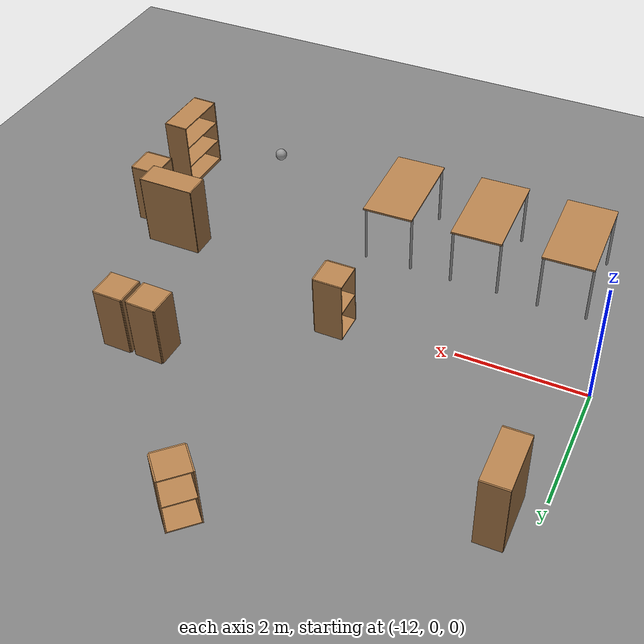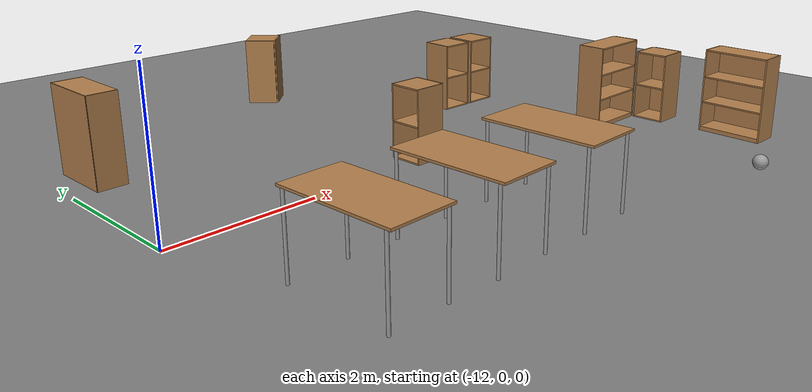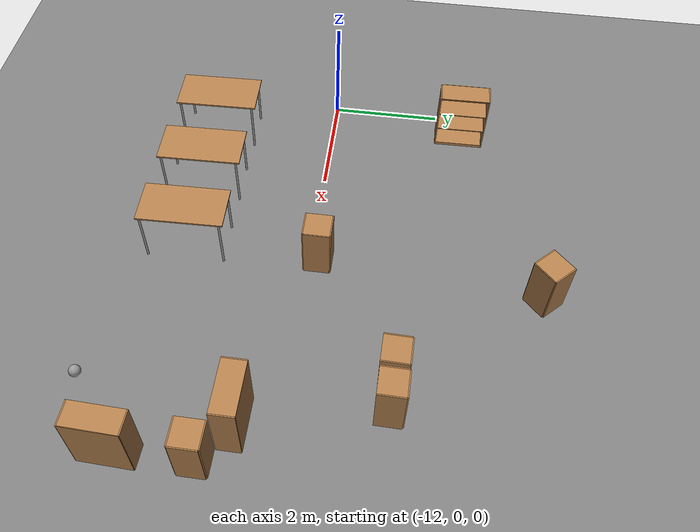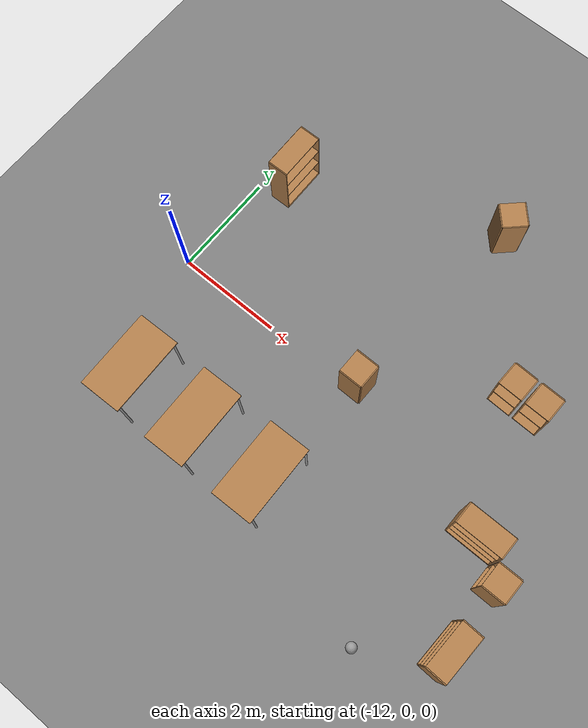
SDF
<sdf version="1.6">
 <world name="default">
  <model name="ground_plane">
   <static>1</static>
   <link name="link">
    <collision name="collision">
     <geometry><plane><normal>0 0 1</normal><size>100 100</size></plane></geometry>
    </collision>
    <visual name="visual">
     <geometry><plane><normal>0 0 1</normal><size>100 100</size></plane></geometry>
     <material>
      <ambient>0.5 0.5 0.5 1</ambient>
      <diffuse>0.5 0.5 0.5 1</diffuse>
      <specular>0.1 0.1 0.1 1</specular>
     </material>
    </visual>
   </link>
  </model>
  <model name="cabinet">
   <static>1</static>
   <link name="cabinet_bottom_plate">
    <inertial>
     <pose>0 0 -1 0 -0 0</pose>
     <inertia><ixx>2.05</ixx><ixy>0</ixy><ixz>0</ixz><iyy>2.05</iyy><iyz>0</iyz><izz>2.05</izz></inertia>
     <mass>25</mass>
    </inertial>
    <collision name="cabinet_bottom_plate_geom">
     <pose>0 0 0.01 0 -0 0</pose>
     <geometry><box><size>0.45 0.45 0.02</size></box></geometry>
    </collision>
    <visual name="cabinet_bottom_plate_geom_visual">
     <pose>0 0 0.01 0 -0 0</pose>
     <geometry><box><size>0.45 0.45 0.02</size></box></geometry>
     <material>
      <script><uri>file://media/materials/scripts/gazebo.material</uri><name>Gazebo/Wood</name></script>
     </material>
    </visual>
    <collision name="cabinet_bottom_plate_geom_cabinet_back_plate">
     <pose>0.235 0 0.51 0 -0 0</pose>
     <geometry><box><size>0.02 0.45 1.02</size></box></geometry>
    </collision>
    <visual name="cabinet_bottom_plate_geom_cabinet_back_plate_visual">
     <pose>0.235 0 0.51 0 -0 0</pose>
     <geometry><box><size>0.02 0.45 1.02</size></box></geometry>
     <material>
      <script><uri>file://media/materials/scripts/gazebo.material</uri><name>Gazebo/Wood</name></script>
     </material>
    </visual>
    <collision name="cabinet_bottom_plate_geom_cabinet_left_plate">
     <pose>0 0.235 0.51 0 -0 0</pose>
     <geometry><box><size>0.45 0.02 1.02</size></box></geometry>
    </collision>
    <visual name="cabinet_bottom_plate_geom_cabinet_left_plate_visual">
     <pose>0 0.235 0.51 0 -0 0</pose>
     <geometry><box><size>0.45 0.02 1.02</size></box></geometry>
     <material>
      <script><uri>file://media/materials/scripts/gazebo.material</uri><name>Gazebo/Wood</name></script>
     </material>
    </visual>
    <collision name="cabinet_bottom_plate_geom_cabinet_middle_plate">
     <pose>0 0 0.51 0 -0 0</pose>
     <geometry><box><size>0.45 0.45 0.02</size></box></geometry>
    </collision>
    <visual name="cabinet_bottom_plate_geom_cabinet_middle_plate_visual">
     <pose>0 0 0.51 0 -0 0</pose>
     <geometry><box><size>0.45 0.45 0.02</size></box></geometry>
     <material>
      <script><uri>file://media/materials/scripts/gazebo.material</uri><name>Gazebo/Wood</name></script>
     </material>
    </visual>
    <collision name="cabinet_bottom_plate_geom_cabinet_right_plate">
     <pose>0 -0.235 0.51 0 -0 0</pose>
     <geometry><box><size>0.45 0.02 1.02</size></box></geometry>
    </collision>
    <visual name="cabinet_bottom_plate_geom_cabinet_right_plate_visual">
     <pose>0 -0.235 0.51 0 -0 0</pose>
     <geometry><box><size>0.45 0.02 1.02</size></box></geometry>
     <material>
      <script><uri>file://media/materials/scripts/gazebo.material</uri><name>Gazebo/Wood</name></script>
     </material>
    </visual>
    <collision name="cabinet_bottom_plate_geom_cabinet_top_plate">
     <pose>0 0 1.01 0 -0 0</pose>
     <geometry><box><size>0.45 0.45 0.02</size></box></geometry>
    </collision>
    <visual name="cabinet_bottom_plate_geom_cabinet_top_plate_visual">
     <pose>0 0 1.01 0 -0 0</pose>
     <geometry><box><size>0.45 0.45 0.02</size></box></geometry>
     <material>
      <script><uri>file://media/materials/scripts/gazebo.material</uri><name>Gazebo/Wood</name></script>
     </material>
    </visual>
   </link>
   <pose>-5.98044 1.64153 0 0 -0 1.54702</pose>
  </model>
  <model name="cabinet_clone">
   <static>1</static>
   <link name="cabinet_bottom_plate">
    <inertial>
     <pose>0 0 -1 0 -0 0</pose>
     <inertia><ixx>2.05</ixx><ixy>0</ixy><ixz>0</ixz><iyy>2.05</iyy><iyz>0</iyz><izz>2.05</izz></inertia>
     <mass>25</mass>
    </inertial>
    <collision name="cabinet_bottom_plate_geom">
     <pose>0 0 0.01 0 -0 0</pose>
     <geometry><box><size>0.45 0.45 0.02</size></box></geometry>
    </collision>
    <visual name="cabinet_bottom_plate_geom_visual">
     <pose>0 0 0.01 0 -0 0</pose>
     <geometry><box><size>0.45 0.45 0.02</size></box></geometry>
     <material>
      <script><uri>file://media/materials/scripts/gazebo.material</uri><name>Gazebo/Wood</name></script>
     </material>
    </visual>
    <collision name="cabinet_bottom_plate_geom_cabinet_back_plate">
     <pose>0.235 0 0.51 0 -0 0</pose>
     <geometry><box><size>0.02 0.45 1.02</size></box></geometry>
    </collision>
    <visual name="cabinet_bottom_plate_geom_cabinet_back_plate_visual">
     <pose>0.235 0 0.51 0 -0 0</pose>
     <geometry><box><size>0.02 0.45 1.02</size></box></geometry>
     <material>
      <script><uri>file://media/materials/scripts/gazebo.material</uri><name>Gazebo/Wood</name></script>
     </material>
    </visual>
    <collision name="cabinet_bottom_plate_geom_cabinet_left_plate">
     <pose>0 0.235 0.51 0 -0 0</pose>
     <geometry><box><size>0.45 0.02 1.02</size></box></geometry>
    </collision>
    <visual name="cabinet_bottom_plate_geom_cabinet_left_plate_visual">
     <pose>0 0.235 0.51 0 -0 0</pose>
     <geometry><box><size>0.45 0.02 1.02</size></box></geometry>
     <material>
      <script><uri>file://media/materials/scripts/gazebo.material</uri><name>Gazebo/Wood</name></script>
     </material>
    </visual>
    <collision name="cabinet_bottom_plate_geom_cabinet_middle_plate">
     <pose>0 0 0.51 0 -0 0</pose>
     <geometry><box><size>0.45 0.45 0.02</size></box></geometry>
    </collision>
    <visual name="cabinet_bottom_plate_geom_cabinet_middle_plate_visual">
     <pose>0 0 0.51 0 -0 0</pose>
     <geometry><box><size>0.45 0.45 0.02</size></box></geometry>
     <material>
      <script><uri>file://media/materials/scripts/gazebo.material</uri><name>Gazebo/Wood</name></script>
     </material>
    </visual>
    <collision name="cabinet_bottom_plate_geom_cabinet_right_plate">
     <pose>0 -0.235 0.51 0 -0 0</pose>
     <geometry><box><size>0.45 0.02 1.02</size></box></geometry>
    </collision>
    <visual name="cabinet_bottom_plate_geom_cabinet_right_plate_visual">
     <pose>0 -0.235 0.51 0 -0 0</pose>
     <geometry><box><size>0.45 0.02 1.02</size></box></geometry>
     <material>
      <script><uri>file://media/materials/scripts/gazebo.material</uri><name>Gazebo/Wood</name></script>
     </material>
    </visual>
    <collision name="cabinet_bottom_plate_geom_cabinet_top_plate">
     <pose>0 0 1.01 0 -0 0</pose>
     <geometry><box><size>0.45 0.45 0.02</size></box></geometry>
    </collision>
    <visual name="cabinet_bottom_plate_geom_cabinet_top_plate_visual">
     <pose>0 0 1.01 0 -0 0</pose>
     <geometry><box><size>0.45 0.45 0.02</size></box></geometry>
     <material>
      <script><uri>file://media/materials/scripts/gazebo.material</uri><name>Gazebo/Wood</name></script>
     </material>
    </visual>
   </link>
   <pose>-5.43612 1.63774 0 0 -0 1.5554</pose>
  </model>
  <model name="bookshelf">
   <static>1</static>
   <link name="link">
    <inertial><mass>1</mass></inertial>
    <collision name="back">
     <pose>0 0.005 0.6 0 -0 0</pose>
     <geometry><box><size>0.9 0.01 1.2</size></box></geometry>
    </collision>
    <visual name="visual1">
     <pose>0 0.005 0.6 0 -0 0</pose>
     <geometry><box><size>0.9 0.01 1.2</size></box></geometry>
     <material>
      <script><uri>file://media/materials/scripts/gazebo.material</uri><name>Gazebo/Wood</name></script>
     </material>
    </visual>
    <collision name="left_side">
     <pose>0.45 -0.195 0.6 0 -0 0</pose>
     <geometry><box><size>0.02 0.4 1.2</size></box></geometry>
    </collision>
    <visual name="visual2">
     <pose>0.45 -0.195 0.6 0 -0 0</pose>
     <geometry><box><size>0.02 0.4 1.2</size></box></geometry>
     <material>
      <script><uri>file://media/materials/scripts/gazebo.material</uri><name>Gazebo/Wood</name></script>
     </material>
    </visual>
    <collision name="right_side">
     <pose>-0.45 -0.195 0.6 0 -0 0</pose>
     <geometry><box><size>0.02 0.4 1.2</size></box></geometry>
    </collision>
    <visual name="visual3">
     <pose>-0.45 -0.195 0.6 0 -0 0</pose>
     <geometry><box><size>0.02 0.4 1.2</size></box></geometry>
     <material>
      <script><uri>file://media/materials/scripts/gazebo.material</uri><name>Gazebo/Wood</name></script>
     </material>
    </visual>
    <collision name="bottom">
     <pose>0 -0.195 0.03 0 -0 0</pose>
     <geometry><box><size>0.88 0.4 0.06</size></box></geometry>
    </collision>
    <visual name="visual4">
     <pose>0 -0.195 0.03 0 -0 0</pose>
     <geometry><box><size>0.88 0.4 0.06</size></box></geometry>
     <material>
      <script><uri>file://media/materials/scripts/gazebo.material</uri><name>Gazebo/Wood</name></script>
     </material>
    </visual>
    <collision name="top">
     <pose>0 -0.195 1.19 0 -0 0</pose>
     <geometry><box><size>0.88 0.4 0.02</size></box></geometry>
    </collision>
    <visual name="visual5">
     <pose>0 -0.195 1.19 0 -0 0</pose>
     <geometry><box><size>0.88 0.4 0.02</size></box></geometry>
     <material>
      <script><uri>file://media/materials/scripts/gazebo.material</uri><name>Gazebo/Wood</name></script>
     </material>
    </visual>
    <collision name="low_shelf">
     <pose>0 -0.195 0.43 0 -0 0</pose>
     <geometry><box><size>0.88 0.4 0.02</size></box></geometry>
    </collision>
    <visual name="visual6">
     <pose>0 -0.195 0.43 0 -0 0</pose>
     <geometry><box><size>0.88 0.4 0.02</size></box></geometry>
     <material>
      <script><uri>file://media/materials/scripts/gazebo.material</uri><name>Gazebo/Wood</name></script>
     </material>
    </visual>
    <collision name="high_shelf">
     <pose>0 -0.195 0.8 0 -0 0</pose>
     <geometry><box><size>0.88 0.4 0.02</size></box></geometry>
    </collision>
    <visual name="visual7">
     <pose>0 -0.195 0.8 0 -0 0</pose>
     <geometry><box><size>0.88 0.4 0.02</size></box></geometry>
     <material>
      <script><uri>file://media/materials/scripts/gazebo.material</uri><name>Gazebo/Wood</name></script>
     </material>
    </visual>
   </link>
   <pose>-11.7 2.47575 0 0 -0 1.58665</pose>
  </model>
  <model name="table">
   <static>1</static>
   <link name="link">
    <collision name="surface">
     <pose>0 0 1 0 -0 0</pose>
     <geometry><box><size>1.5 0.8 0.03</size></box></geometry>
     <surface><friction><ode><mu>0.6</mu><mu2>0.6</mu2></ode></friction></surface>
    </collision>
    <visual name="visual1">
     <pose>0 0 1 0 -0 0</pose>
     <geometry><box><size>1.5 0.8 0.03</size></box></geometry>
     <material>
      <script><uri>file://media/materials/scripts/gazebo.material</uri><name>Gazebo/Wood</name></script>
     </material>
    </visual>
    <collision name="front_left_leg">
     <pose>0.68 0.38 0.5 0 -0 0</pose>
     <geometry><cylinder><radius>0.02</radius><length>1</length></cylinder></geometry>
    </collision>
    <visual name="front_left_leg">
     <pose>0.68 0.38 0.5 0 -0 0</pose>
     <geometry><cylinder><radius>0.02</radius><length>1</length></cylinder></geometry>
     <material>
      <script><uri>file://media/materials/scripts/gazebo.material</uri><name>Gazebo/Grey</name></script>
     </material>
    </visual>
    <collision name="front_right_leg">
     <pose>0.68 -0.38 0.5 0 -0 0</pose>
     <geometry><cylinder><radius>0.02</radius><length>1</length></cylinder></geometry>
    </collision>
    <visual name="front_right_leg">
     <pose>0.68 -0.38 0.5 0 -0 0</pose>
     <geometry><cylinder><radius>0.02</radius><length>1</length></cylinder></geometry>
     <material>
      <script><uri>file://media/materials/scripts/gazebo.material</uri><name>Gazebo/Grey</name></script>
     </material>
    </visual>
    <collision name="back_right_leg">
     <pose>-0.68 -0.38 0.5 0 -0 0</pose>
     <geometry><cylinder><radius>0.02</radius><length>1</length></cylinder></geometry>
    </collision>
    <visual name="back_right_leg">
     <pose>-0.68 -0.38 0.5 0 -0 0</pose>
     <geometry><cylinder><radius>0.02</radius><length>1</length></cylinder></geometry>
     <material>
      <script><uri>file://media/materials/scripts/gazebo.material</uri><name>Gazebo/Grey</name></script>
     </material>
    </visual>
    <collision name="back_left_leg">
     <pose>-0.68 0.38 0.5 0 -0 0</pose>
     <geometry><cylinder><radius>0.02</radius><length>1</length></cylinder></geometry>
    </collision>
    <visual name="back_left_leg">
     <pose>-0.68 0.38 0.5 0 -0 0</pose>
     <geometry><cylinder><radius>0.02</radius><length>1</length></cylinder></geometry>
     <material>
      <script><uri>file://media/materials/scripts/gazebo.material</uri><name>Gazebo/Grey</name></script>
     </material>
    </visual>
   </link>
   <pose>-9.71332 -2.19913 0 0 -0 1.59535</pose>
  </model>
  <model name="table_clone">
   <static>1</static>
   <link name="link">
    <collision name="surface">
     <pose>0 0 1 0 -0 0</pose>
     <geometry><box><size>1.5 0.8 0.03</size></box></geometry>
     <surface><friction><ode><mu>0.6</mu><mu2>0.6</mu2></ode></friction></surface>
    </collision>
    <visual name="visual1">
     <pose>0 0 1 0 -0 0</pose>
     <geometry><box><size>1.5 0.8 0.03</size></box></geometry>
     <material>
      <script><uri>file://media/materials/scripts/gazebo.material</uri><name>Gazebo/Wood</name></script>
     </material>
    </visual>
    <collision name="front_left_leg">
     <pose>0.68 0.38 0.5 0 -0 0</pose>
     <geometry><cylinder><radius>0.02</radius><length>1</length></cylinder></geometry>
    </collision>
    <visual name="front_left_leg">
     <pose>0.68 0.38 0.5 0 -0 0</pose>
     <geometry><cylinder><radius>0.02</radius><length>1</length></cylinder></geometry>
     <material>
      <script><uri>file://media/materials/scripts/gazebo.material</uri><name>Gazebo/Grey</name></script>
     </material>
    </visual>
    <collision name="front_right_leg">
     <pose>0.68 -0.38 0.5 0 -0 0</pose>
     <geometry><cylinder><radius>0.02</radius><length>1</length></cylinder></geometry>
    </collision>
    <visual name="front_right_leg">
     <pose>0.68 -0.38 0.5 0 -0 0</pose>
     <geometry><cylinder><radius>0.02</radius><length>1</length></cylinder></geometry>
     <material>
      <script><uri>file://media/materials/scripts/gazebo.material</uri><name>Gazebo/Grey</name></script>
     </material>
    </visual>
    <collision name="back_right_leg">
     <pose>-0.68 -0.38 0.5 0 -0 0</pose>
     <geometry><cylinder><radius>0.02</radius><length>1</length></cylinder></geometry>
    </collision>
    <visual name="back_right_leg">
     <pose>-0.68 -0.38 0.5 0 -0 0</pose>
     <geometry><cylinder><radius>0.02</radius><length>1</length></cylinder></geometry>
     <material>
      <script><uri>file://media/materials/scripts/gazebo.material</uri><name>Gazebo/Grey</name></script>
     </material>
    </visual>
    <collision name="back_left_leg">
     <pose>-0.68 0.38 0.5 0 -0 0</pose>
     <geometry><cylinder><radius>0.02</radius><length>1</length></cylinder></geometry>
    </collision>
    <visual name="back_left_leg">
     <pose>-0.68 0.38 0.5 0 -0 0</pose>
     <geometry><cylinder><radius>0.02</radius><length>1</length></cylinder></geometry>
     <material>
      <script><uri>file://media/materials/scripts/gazebo.material</uri><name>Gazebo/Grey</name></script>
     </material>
    </visual>
   </link>
   <pose>-8.27555 -2.18975 0 0 -0 1.59535</pose>
  </model>
  <model name="cabinet_0">
   <static>1</static>
   <link name="cabinet_bottom_plate">
    <inertial>
     <pose>0 0 -1 0 -0 0</pose>
     <inertia><ixx>2.05</ixx><ixy>0</ixy><ixz>0</ixz><iyy>2.05</iyy><iyz>0</iyz><izz>2.05</izz></inertia>
     <mass>25</mass>
    </inertial>
    <collision name="cabinet_bottom_plate_geom">
     <pose>0 0 0.01 0 -0 0</pose>
     <geometry><box><size>0.45 0.45 0.02</size></box></geometry>
    </collision>
    <visual name="cabinet_bottom_plate_geom_visual">
     <pose>0 0 0.01 0 -0 0</pose>
     <geometry><box><size>0.45 0.45 0.02</size></box></geometry>
     <material>
      <script><uri>file://media/materials/scripts/gazebo.material</uri><name>Gazebo/Wood</name></script>
     </material>
    </visual>
    <collision name="cabinet_bottom_plate_geom_cabinet_back_plate">
     <pose>0.235 0 0.51 0 -0 0</pose>
     <geometry><box><size>0.02 0.45 1.02</size></box></geometry>
    </collision>
    <visual name="cabinet_bottom_plate_geom_cabinet_back_plate_visual">
     <pose>0.235 0 0.51 0 -0 0</pose>
     <geometry><box><size>0.02 0.45 1.02</size></box></geometry>
     <material>
      <script><uri>file://media/materials/scripts/gazebo.material</uri><name>Gazebo/Wood</name></script>
     </material>
    </visual>
    <collision name="cabinet_bottom_plate_geom_cabinet_left_plate">
     <pose>0 0.235 0.51 0 -0 0</pose>
     <geometry><box><size>0.45 0.02 1.02</size></box></geometry>
    </collision>
    <visual name="cabinet_bottom_plate_geom_cabinet_left_plate_visual">
     <pose>0 0.235 0.51 0 -0 0</pose>
     <geometry><box><size>0.45 0.02 1.02</size></box></geometry>
     <material>
      <script><uri>file://media/materials/scripts/gazebo.material</uri><name>Gazebo/Wood</name></script>
     </material>
    </visual>
    <collision name="cabinet_bottom_plate_geom_cabinet_middle_plate">
     <pose>0 0 0.51 0 -0 0</pose>
     <geometry><box><size>0.45 0.45 0.02</size></box></geometry>
    </collision>
    <visual name="cabinet_bottom_plate_geom_cabinet_middle_plate_visual">
     <pose>0 0 0.51 0 -0 0</pose>
     <geometry><box><size>0.45 0.45 0.02</size></box></geometry>
     <material>
      <script><uri>file://media/materials/scripts/gazebo.material</uri><name>Gazebo/Wood</name></script>
     </material>
    </visual>
    <collision name="cabinet_bottom_plate_geom_cabinet_right_plate">
     <pose>0 -0.235 0.51 0 -0 0</pose>
     <geometry><box><size>0.45 0.02 1.02</size></box></geometry>
    </collision>
    <visual name="cabinet_bottom_plate_geom_cabinet_right_plate_visual">
     <pose>0 -0.235 0.51 0 -0 0</pose>
     <geometry><box><size>0.45 0.02 1.02</size></box></geometry>
     <material>
      <script><uri>file://media/materials/scripts/gazebo.material</uri><name>Gazebo/Wood</name></script>
     </material>
    </visual>
    <collision name="cabinet_bottom_plate_geom_cabinet_top_plate">
     <pose>0 0 1.01 0 -0 0</pose>
     <geometry><box><size>0.45 0.45 0.02</size></box></geometry>
    </collision>
    <visual name="cabinet_bottom_plate_geom_cabinet_top_plate_visual">
     <pose>0 0 1.01 0 -0 0</pose>
     <geometry><box><size>0.45 0.45 0.02</size></box></geometry>
     <material>
      <script><uri>file://media/materials/scripts/gazebo.material</uri><name>Gazebo/Wood</name></script>
     </material>
    </visual>
   </link>
   <pose>-4.26075 -1.13673 0 0 -0 0</pose>
  </model>
  <model name="bookshelf_0">
   <static>1</static>
   <link name="link">
    <inertial><mass>1</mass></inertial>
    <collision name="back">
     <pose>0 0.005 0.6 0 -0 0</pose>
     <geometry><box><size>0.9 0.01 1.2</size></box></geometry>
    </collision>
    <visual name="visual1">
     <pose>0 0.005 0.6 0 -0 0</pose>
     <geometry><box><size>0.9 0.01 1.2</size></box></geometry>
     <material>
      <script><uri>file://media/materials/scripts/gazebo.material</uri><name>Gazebo/Wood</name></script>
     </material>
    </visual>
    <collision name="left_side">
     <pose>0.45 -0.195 0.6 0 -0 0</pose>
     <geometry><box><size>0.02 0.4 1.2</size></box></geometry>
    </collision>
    <visual name="visual2">
     <pose>0.45 -0.195 0.6 0 -0 0</pose>
     <geometry><box><size>0.02 0.4 1.2</size></box></geometry>
     <material>
      <script><uri>file://media/materials/scripts/gazebo.material</uri><name>Gazebo/Wood</name></script>
     </material>
    </visual>
    <collision name="right_side">
     <pose>-0.45 -0.195 0.6 0 -0 0</pose>
     <geometry><box><size>0.02 0.4 1.2</size></box></geometry>
    </collision>
    <visual name="visual3">
     <pose>-0.45 -0.195 0.6 0 -0 0</pose>
     <geometry><box><size>0.02 0.4 1.2</size></box></geometry>
     <material>
      <script><uri>file://media/materials/scripts/gazebo.material</uri><name>Gazebo/Wood</name></script>
     </material>
    </visual>
    <collision name="bottom">
     <pose>0 -0.195 0.03 0 -0 0</pose>
     <geometry><box><size>0.88 0.4 0.06</size></box></geometry>
    </collision>
    <visual name="visual4">
     <pose>0 -0.195 0.03 0 -0 0</pose>
     <geometry><box><size>0.88 0.4 0.06</size></box></geometry>
     <material>
      <script><uri>file://media/materials/scripts/gazebo.material</uri><name>Gazebo/Wood</name></script>
     </material>
    </visual>
    <collision name="top">
     <pose>0 -0.195 1.19 0 -0 0</pose>
     <geometry><box><size>0.88 0.4 0.02</size></box></geometry>
    </collision>
    <visual name="visual5">
     <pose>0 -0.195 1.19 0 -0 0</pose>
     <geometry><box><size>0.88 0.4 0.02</size></box></geometry>
     <material>
      <script><uri>file://media/materials/scripts/gazebo.material</uri><name>Gazebo/Wood</name></script>
     </material>
    </visual>
    <collision name="low_shelf">
     <pose>0 -0.195 0.43 0 -0 0</pose>
     <geometry><box><size>0.88 0.4 0.02</size></box></geometry>
    </collision>
    <visual name="visual6">
     <pose>0 -0.195 0.43 0 -0 0</pose>
     <geometry><box><size>0.88 0.4 0.02</size></box></geometry>
     <material>
      <script><uri>file://media/materials/scripts/gazebo.material</uri><name>Gazebo/Wood</name></script>
     </material>
    </visual>
    <collision name="high_shelf">
     <pose>0 -0.195 0.8 0 -0 0</pose>
     <geometry><box><size>0.88 0.4 0.02</size></box></geometry>
    </collision>
    <visual name="visual7">
     <pose>0 -0.195 0.8 0 -0 0</pose>
     <geometry><box><size>0.88 0.4 0.02</size></box></geometry>
     <material>
      <script><uri>file://media/materials/scripts/gazebo.material</uri><name>Gazebo/Wood</name></script>
     </material>
    </visual>
   </link>
   <pose>-4.94368 -0.481988 0 0 -0 0</pose>
  </model>
  <model name="bookshelf_0_clone">
   <static>1</static>
   <link name="link">
    <inertial><mass>1</mass></inertial>
    <collision name="back">
     <pose>0 0.005 0.6 0 -0 0</pose>
     <geometry><box><size>0.9 0.01 1.2</size></box></geometry>
    </collision>
    <visual name="visual1">
     <pose>0 0.005 0.6 0 -0 0</pose>
     <geometry><box><size>0.9 0.01 1.2</size></box></geometry>
     <material>
      <script><uri>file://media/materials/scripts/gazebo.material</uri><name>Gazebo/Wood</name></script>
     </material>
    </visual>
    <collision name="left_side">
     <pose>0.45 -0.195 0.6 0 -0 0</pose>
     <geometry><box><size>0.02 0.4 1.2</size></box></geometry>
    </collision>
    <visual name="visual2">
     <pose>0.45 -0.195 0.6 0 -0 0</pose>
     <geometry><box><size>0.02 0.4 1.2</size></box></geometry>
     <material>
      <script><uri>file://media/materials/scripts/gazebo.material</uri><name>Gazebo/Wood</name></script>
     </material>
    </visual>
    <collision name="right_side">
     <pose>-0.45 -0.195 0.6 0 -0 0</pose>
     <geometry><box><size>0.02 0.4 1.2</size></box></geometry>
    </collision>
    <visual name="visual3">
     <pose>-0.45 -0.195 0.6 0 -0 0</pose>
     <geometry><box><size>0.02 0.4 1.2</size></box></geometry>
     <material>
      <script><uri>file://media/materials/scripts/gazebo.material</uri><name>Gazebo/Wood</name></script>
     </material>
    </visual>
    <collision name="bottom">
     <pose>0 -0.195 0.03 0 -0 0</pose>
     <geometry><box><size>0.88 0.4 0.06</size></box></geometry>
    </collision>
    <visual name="visual4">
     <pose>0 -0.195 0.03 0 -0 0</pose>
     <geometry><box><size>0.88 0.4 0.06</size></box></geometry>
     <material>
      <script><uri>file://media/materials/scripts/gazebo.material</uri><name>Gazebo/Wood</name></script>
     </material>
    </visual>
    <collision name="top">
     <pose>0 -0.195 1.19 0 -0 0</pose>
     <geometry><box><size>0.88 0.4 0.02</size></box></geometry>
    </collision>
    <visual name="visual5">
     <pose>0 -0.195 1.19 0 -0 0</pose>
     <geometry><box><size>0.88 0.4 0.02</size></box></geometry>
     <material>
      <script><uri>file://media/materials/scripts/gazebo.material</uri><name>Gazebo/Wood</name></script>
     </material>
    </visual>
    <collision name="low_shelf">
     <pose>0 -0.195 0.43 0 -0 0</pose>
     <geometry><box><size>0.88 0.4 0.02</size></box></geometry>
    </collision>
    <visual name="visual6">
     <pose>0 -0.195 0.43 0 -0 0</pose>
     <geometry><box><size>0.88 0.4 0.02</size></box></geometry>
     <material>
      <script><uri>file://media/materials/scripts/gazebo.material</uri><name>Gazebo/Wood</name></script>
     </material>
    </visual>
    <collision name="high_shelf">
     <pose>0 -0.195 0.8 0 -0 0</pose>
     <geometry><box><size>0.88 0.4 0.02</size></box></geometry>
    </collision>
    <visual name="visual7">
     <pose>0 -0.195 0.8 0 -0 0</pose>
     <geometry><box><size>0.88 0.4 0.02</size></box></geometry>
     <material>
      <script><uri>file://media/materials/scripts/gazebo.material</uri><name>Gazebo/Wood</name></script>
     </material>
    </visual>
   </link>
   <pose>-4.03179 -2.43623 0 0 0 -1.60168</pose>
  </model>
  <model name="cabinet_3">
   <static>1</static>
   <link name="cabinet_bottom_plate">
    <inertial>
     <pose>0 0 -1 0 -0 0</pose>
     <inertia><ixx>2.05</ixx><ixy>0</ixy><ixz>0</ixz><iyy>2.05</iyy><iyz>0</iyz><izz>2.05</izz></inertia>
     <mass>25</mass>
    </inertial>
    <collision name="cabinet_bottom_plate_geom">
     <pose>0 0 0.01 0 -0 0</pose>
     <geometry><box><size>0.45 0.45 0.02</size></box></geometry>
    </collision>
    <visual name="cabinet_bottom_plate_geom_visual">
     <pose>0 0 0.01 0 -0 0</pose>
     <geometry><box><size>0.45 0.45 0.02</size></box></geometry>
     <material>
      <script><uri>file://media/materials/scripts/gazebo.material</uri><name>Gazebo/Wood</name></script>
     </material>
    </visual>
    <collision name="cabinet_bottom_plate_geom_cabinet_back_plate">
     <pose>0.235 0 0.51 0 -0 0</pose>
     <geometry><box><size>0.02 0.45 1.02</size></box></geometry>
    </collision>
    <visual name="cabinet_bottom_plate_geom_cabinet_back_plate_visual">
     <pose>0.235 0 0.51 0 -0 0</pose>
     <geometry><box><size>0.02 0.45 1.02</size></box></geometry>
     <material>
      <script><uri>file://media/materials/scripts/gazebo.material</uri><name>Gazebo/Wood</name></script>
     </material>
    </visual>
    <collision name="cabinet_bottom_plate_geom_cabinet_left_plate">
     <pose>0 0.235 0.51 0 -0 0</pose>
     <geometry><box><size>0.45 0.02 1.02</size></box></geometry>
    </collision>
    <visual name="cabinet_bottom_plate_geom_cabinet_left_plate_visual">
     <pose>0 0.235 0.51 0 -0 0</pose>
     <geometry><box><size>0.45 0.02 1.02</size></box></geometry>
     <material>
      <script><uri>file://media/materials/scripts/gazebo.material</uri><name>Gazebo/Wood</name></script>
     </material>
    </visual>
    <collision name="cabinet_bottom_plate_geom_cabinet_middle_plate">
     <pose>0 0 0.51 0 -0 0</pose>
     <geometry><box><size>0.45 0.45 0.02</size></box></geometry>
    </collision>
    <visual name="cabinet_bottom_plate_geom_cabinet_middle_plate_visual">
     <pose>0 0 0.51 0 -0 0</pose>
     <geometry><box><size>0.45 0.45 0.02</size></box></geometry>
     <material>
      <script><uri>file://media/materials/scripts/gazebo.material</uri><name>Gazebo/Wood</name></script>
     </material>
    </visual>
    <collision name="cabinet_bottom_plate_geom_cabinet_right_plate">
     <pose>0 -0.235 0.51 0 -0 0</pose>
     <geometry><box><size>0.45 0.02 1.02</size></box></geometry>
    </collision>
    <visual name="cabinet_bottom_plate_geom_cabinet_right_plate_visual">
     <pose>0 -0.235 0.51 0 -0 0</pose>
     <geometry><box><size>0.45 0.02 1.02</size></box></geometry>
     <material>
      <script><uri>file://media/materials/scripts/gazebo.material</uri><name>Gazebo/Wood</name></script>
     </material>
    </visual>
    <collision name="cabinet_bottom_plate_geom_cabinet_top_plate">
     <pose>0 0 1.01 0 -0 0</pose>
     <geometry><box><size>0.45 0.45 0.02</size></box></geometry>
    </collision>
    <visual name="cabinet_bottom_plate_geom_cabinet_top_plate_visual">
     <pose>0 0 1.01 0 -0 0</pose>
     <geometry><box><size>0.45 0.45 0.02</size></box></geometry>
     <material>
      <script><uri>file://media/materials/scripts/gazebo.material</uri><name>Gazebo/Wood</name></script>
     </material>
    </visual>
   </link>
   <pose>-7.82749 4.03723 0 0 0 -0.807841</pose>
  </model>
  <model name="cabinet_4">
   <static>1</static>
   <link name="cabinet_bottom_plate">
    <inertial>
     <pose>0 0 -1 0 -0 0</pose>
     <inertia><ixx>2.05</ixx><ixy>0</ixy><ixz>0</ixz><iyy>2.05</iyy><iyz>0</iyz><izz>2.05</izz></inertia>
     <mass>25</mass>
    </inertial>
    <collision name="cabinet_bottom_plate_geom">
     <pose>0 0 0.01 0 -0 0</pose>
     <geometry><box><size>0.45 0.45 0.02</size></box></geometry>
    </collision>
    <visual name="cabinet_bottom_plate_geom_visual">
     <pose>0 0 0.01 0 -0 0</pose>
     <geometry><box><size>0.45 0.45 0.02</size></box></geometry>
     <material>
      <script><uri>file://media/materials/scripts/gazebo.material</uri><name>Gazebo/Wood</name></script>
     </material>
    </visual>
    <collision name="cabinet_bottom_plate_geom_cabinet_back_plate">
     <pose>0.235 0 0.51 0 -0 0</pose>
     <geometry><box><size>0.02 0.45 1.02</size></box></geometry>
    </collision>
    <visual name="cabinet_bottom_plate_geom_cabinet_back_plate_visual">
     <pose>0.235 0 0.51 0 -0 0</pose>
     <geometry><box><size>0.02 0.45 1.02</size></box></geometry>
     <material>
      <script><uri>file://media/materials/scripts/gazebo.material</uri><name>Gazebo/Wood</name></script>
     </material>
    </visual>
    <collision name="cabinet_bottom_plate_geom_cabinet_left_plate">
     <pose>0 0.235 0.51 0 -0 0</pose>
     <geometry><box><size>0.45 0.02 1.02</size></box></geometry>
    </collision>
    <visual name="cabinet_bottom_plate_geom_cabinet_left_plate_visual">
     <pose>0 0.235 0.51 0 -0 0</pose>
     <geometry><box><size>0.45 0.02 1.02</size></box></geometry>
     <material>
      <script><uri>file://media/materials/scripts/gazebo.material</uri><name>Gazebo/Wood</name></script>
     </material>
    </visual>
    <collision name="cabinet_bottom_plate_geom_cabinet_middle_plate">
     <pose>0 0 0.51 0 -0 0</pose>
     <geometry><box><size>0.45 0.45 0.02</size></box></geometry>
    </collision>
    <visual name="cabinet_bottom_plate_geom_cabinet_middle_plate_visual">
     <pose>0 0 0.51 0 -0 0</pose>
     <geometry><box><size>0.45 0.45 0.02</size></box></geometry>
     <material>
      <script><uri>file://media/materials/scripts/gazebo.material</uri><name>Gazebo/Wood</name></script>
     </material>
    </visual>
    <collision name="cabinet_bottom_plate_geom_cabinet_right_plate">
     <pose>0 -0.235 0.51 0 -0 0</pose>
     <geometry><box><size>0.45 0.02 1.02</size></box></geometry>
    </collision>
    <visual name="cabinet_bottom_plate_geom_cabinet_right_plate_visual">
     <pose>0 -0.235 0.51 0 -0 0</pose>
     <geometry><box><size>0.45 0.02 1.02</size></box></geometry>
     <material>
      <script><uri>file://media/materials/scripts/gazebo.material</uri><name>Gazebo/Wood</name></script>
     </material>
    </visual>
    <collision name="cabinet_bottom_plate_geom_cabinet_top_plate">
     <pose>0 0 1.01 0 -0 0</pose>
     <geometry><box><size>0.45 0.45 0.02</size></box></geometry>
    </collision>
    <visual name="cabinet_bottom_plate_geom_cabinet_top_plate_visual">
     <pose>0 0 1.01 0 -0 0</pose>
     <geometry><box><size>0.45 0.45 0.02</size></box></geometry>
     <material>
      <script><uri>file://media/materials/scripts/gazebo.material</uri><name>Gazebo/Wood</name></script>
     </material>
    </visual>
   </link>
   <pose>-8.14354 0.147998 0 0 -0 0</pose>
  </model>
  <model name="table_clone_0">
   <static>1</static>
   <link name="link">
    <collision name="surface">
     <pose>0 0 1 0 -0 0</pose>
     <geometry><box><size>1.5 0.8 0.03</size></box></geometry>
     <surface><friction><ode><mu>0.6</mu><mu2>0.6</mu2></ode></friction></surface>
    </collision>
    <visual name="visual1">
     <pose>0 0 1 0 -0 0</pose>
     <geometry><box><size>1.5 0.8 0.03</size></box></geometry>
     <material>
      <script><uri>file://media/materials/scripts/gazebo.material</uri><name>Gazebo/Wood</name></script>
     </material>
    </visual>
    <collision name="front_left_leg">
     <pose>0.68 0.38 0.5 0 -0 0</pose>
     <geometry><cylinder><radius>0.02</radius><length>1</length></cylinder></geometry>
    </collision>
    <visual name="front_left_leg">
     <pose>0.68 0.38 0.5 0 -0 0</pose>
     <geometry><cylinder><radius>0.02</radius><length>1</length></cylinder></geometry>
     <material>
      <script><uri>file://media/materials/scripts/gazebo.material</uri><name>Gazebo/Grey</name></script>
     </material>
    </visual>
    <collision name="front_right_leg">
     <pose>0.68 -0.38 0.5 0 -0 0</pose>
     <geometry><cylinder><radius>0.02</radius><length>1</length></cylinder></geometry>
    </collision>
    <visual name="front_right_leg">
     <pose>0.68 -0.38 0.5 0 -0 0</pose>
     <geometry><cylinder><radius>0.02</radius><length>1</length></cylinder></geometry>
     <material>
      <script><uri>file://media/materials/scripts/gazebo.material</uri><name>Gazebo/Grey</name></script>
     </material>
    </visual>
    <collision name="back_right_leg">
     <pose>-0.68 -0.38 0.5 0 -0 0</pose>
     <geometry><cylinder><radius>0.02</radius><length>1</length></cylinder></geometry>
    </collision>
    <visual name="back_right_leg">
     <pose>-0.68 -0.38 0.5 0 -0 0</pose>
     <geometry><cylinder><radius>0.02</radius><length>1</length></cylinder></geometry>
     <material>
      <script><uri>file://media/materials/scripts/gazebo.material</uri><name>Gazebo/Grey</name></script>
     </material>
    </visual>
    <collision name="back_left_leg">
     <pose>-0.68 0.38 0.5 0 -0 0</pose>
     <geometry><cylinder><radius>0.02</radius><length>1</length></cylinder></geometry>
    </collision>
    <visual name="back_left_leg">
     <pose>-0.68 0.38 0.5 0 -0 0</pose>
     <geometry><cylinder><radius>0.02</radius><length>1</length></cylinder></geometry>
     <material>
      <script><uri>file://media/materials/scripts/gazebo.material</uri><name>Gazebo/Grey</name></script>
     </material>
    </visual>
   </link>
   <pose>-11.1336 -2.19047 0 0 -0 1.59535</pose>
  </model>
  <model name="my_ball">
   <link name="link_0">
    <inertial>
     <mass>1</mass>
     <inertia><ixx>0.1</ixx><ixy>0</ixy><ixz>0</ixz><iyy>0.1</iyy><iyz>0</iyz><izz>0.1</izz></inertia>
    </inertial>
    <visual name="visual">
     <geometry><sphere><radius>0.1</radius></sphere></geometry>
     <material>
      <lighting>1</lighting>
      <script><uri>file://media/materials/scripts/gazebo.material</uri><name>Gazebo/Grey</name></script>
      <shader type="pixel"><normal_map>__default__</normal_map></shader>
      <ambient>1 1 1 1</ambient>
      <diffuse>1 1 1 1</diffuse>
      <specular>1 1 1 1</specular>
      <emissive>0 0 0 1</emissive>
     </material>
    </visual>
    <collision name="collision">
     <geometry><sphere><radius>0.1</radius></sphere></geometry>
     <surface>
      <friction>
       <ode><mu>1</mu><mu2>1</mu2><fdir1>0 0 0</fdir1><slip1>0</slip1><slip2>0</slip2></ode>
       <torsional>
        <coefficient>1</coefficient>
        <patch_radius>0</patch_radius>
        <surface_radius>0</surface_radius>
        <use_patch_radius>1</use_patch_radius>
        <ode><slip>0</slip></ode>
       </torsional>
      </friction>
      <bounce><restitution_coefficient>0</restitution_coefficient><threshold>1e+06</threshold></bounce>
      <contact>
       <collide_without_contact>0</collide_without_contact>
       <collide_without_contact_bitmask>1</collide_without_contact_bitmask>
       <collide_bitmask>1</collide_bitmask>
       <ode>
        <soft_cfm>0</soft_cfm>
        <soft_erp>0.2</soft_erp>
        <kp>1e+13</kp>
        <kd>1</kd>
        <max_vel>0.01</max_vel>
        <min_depth>0</min_depth>
       </ode>
       <bullet>
        <split_impulse>1</split_impulse>
        <split_impulse_penetration_threshold>-0.01</split_impulse_penetration_threshold>
        <soft_cfm>0</soft_cfm>
        <soft_erp>0.2</soft_erp>
        <kp>1e+13</kp>
        <kd>1</kd>
       </bullet>
      </contact>
     </surface>
    </collision>
   </link>
   <static>0</static>
   <pose>-5.41899 -3.35585 0.1 0 -0 0</pose>
  </model>
 </world>
</sdf>
